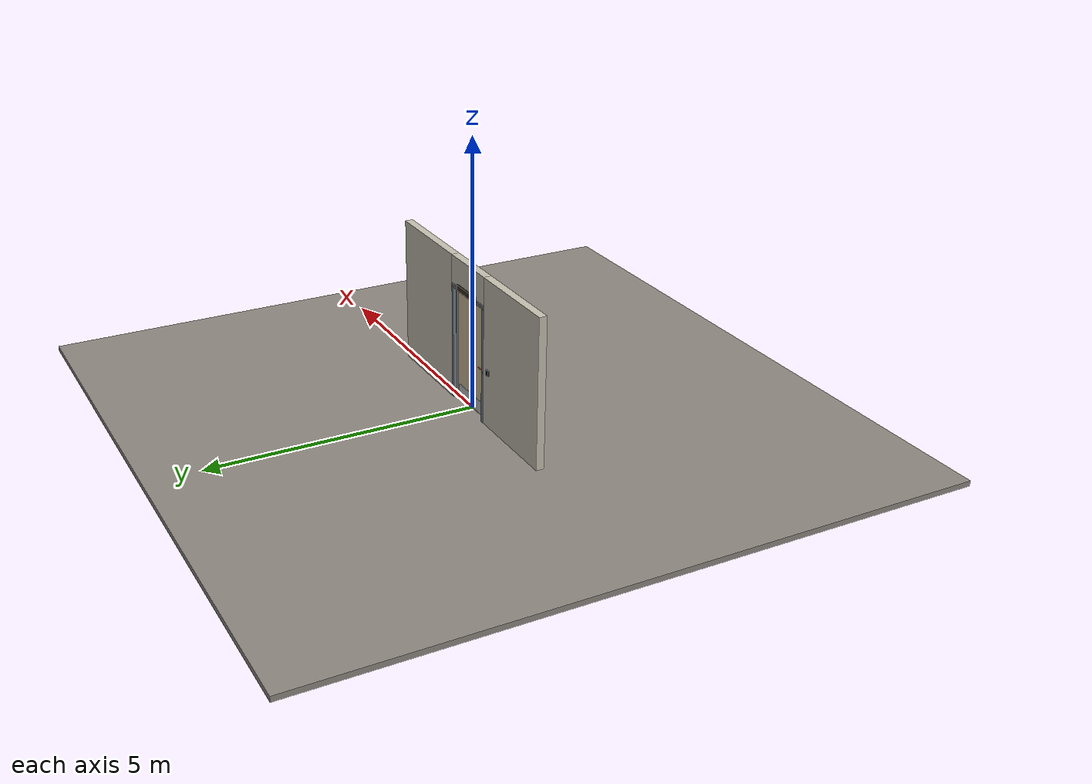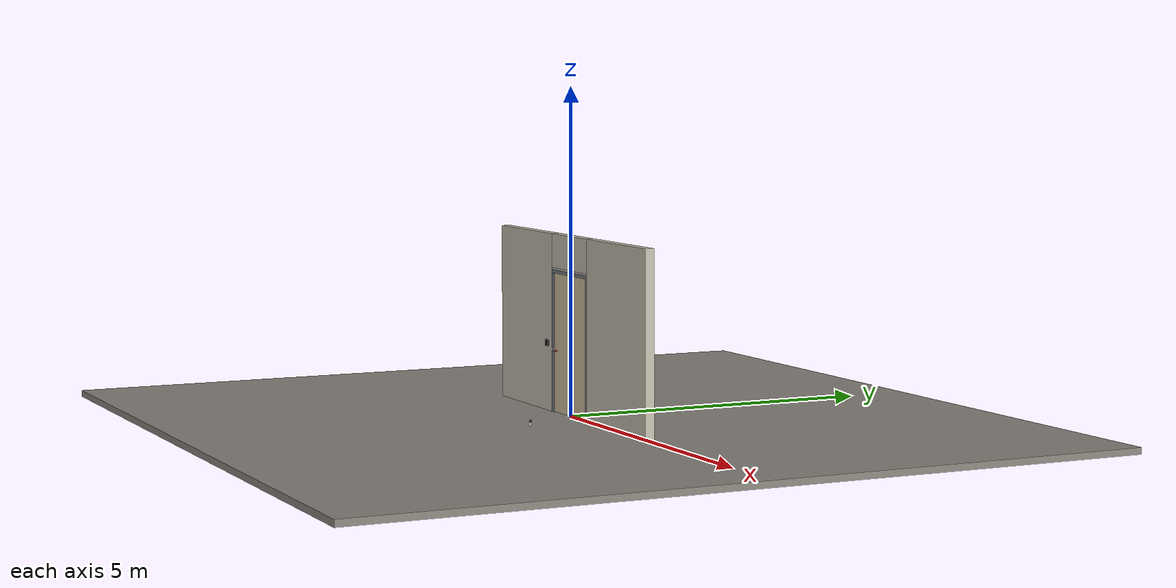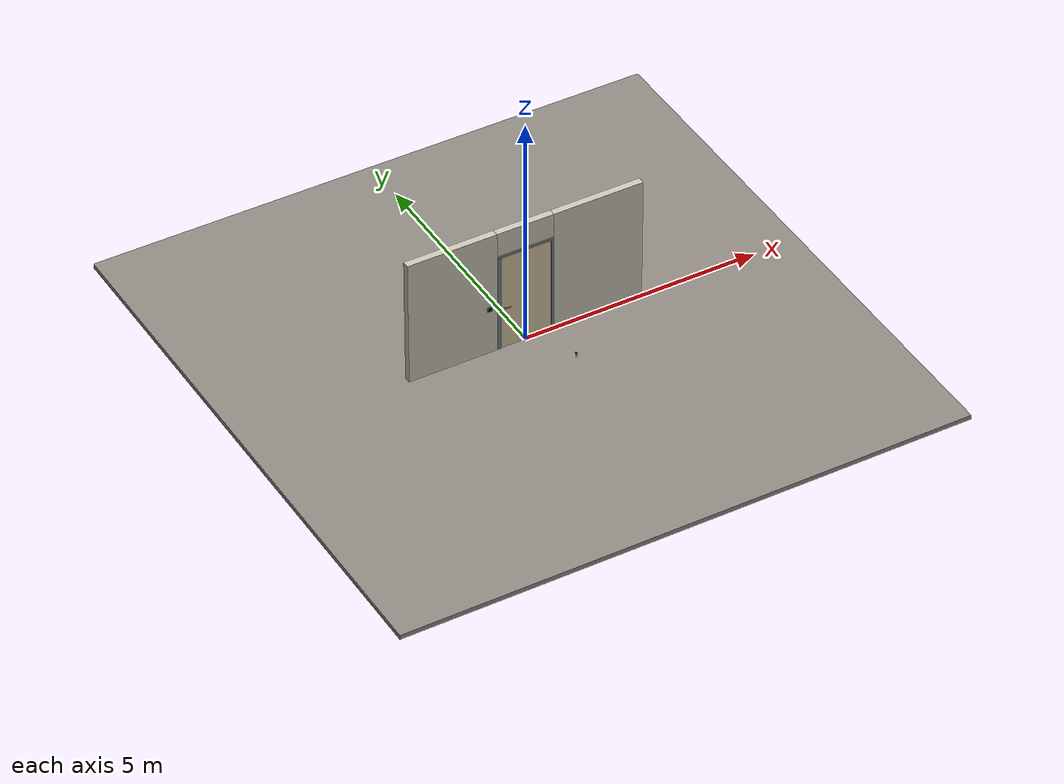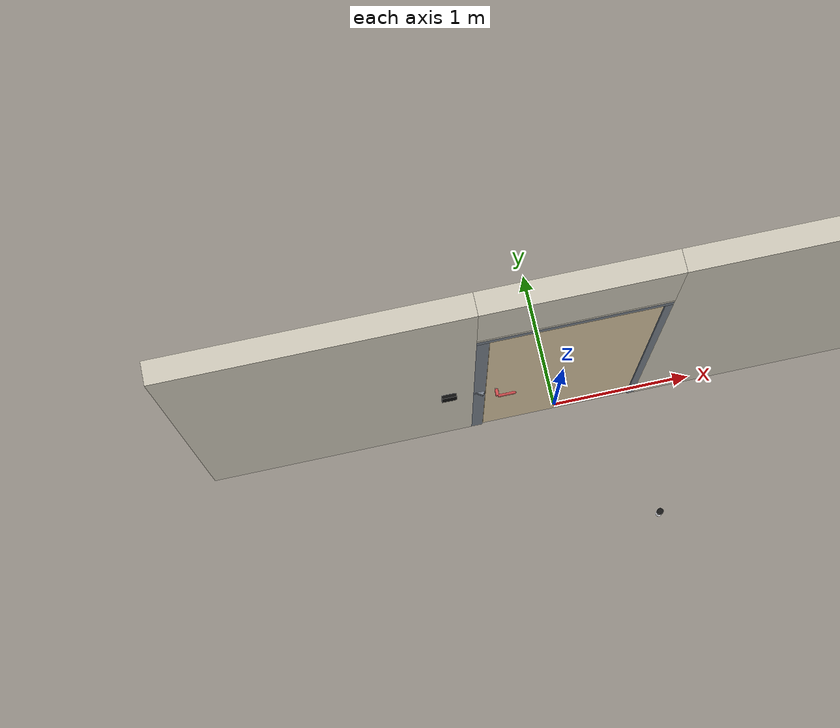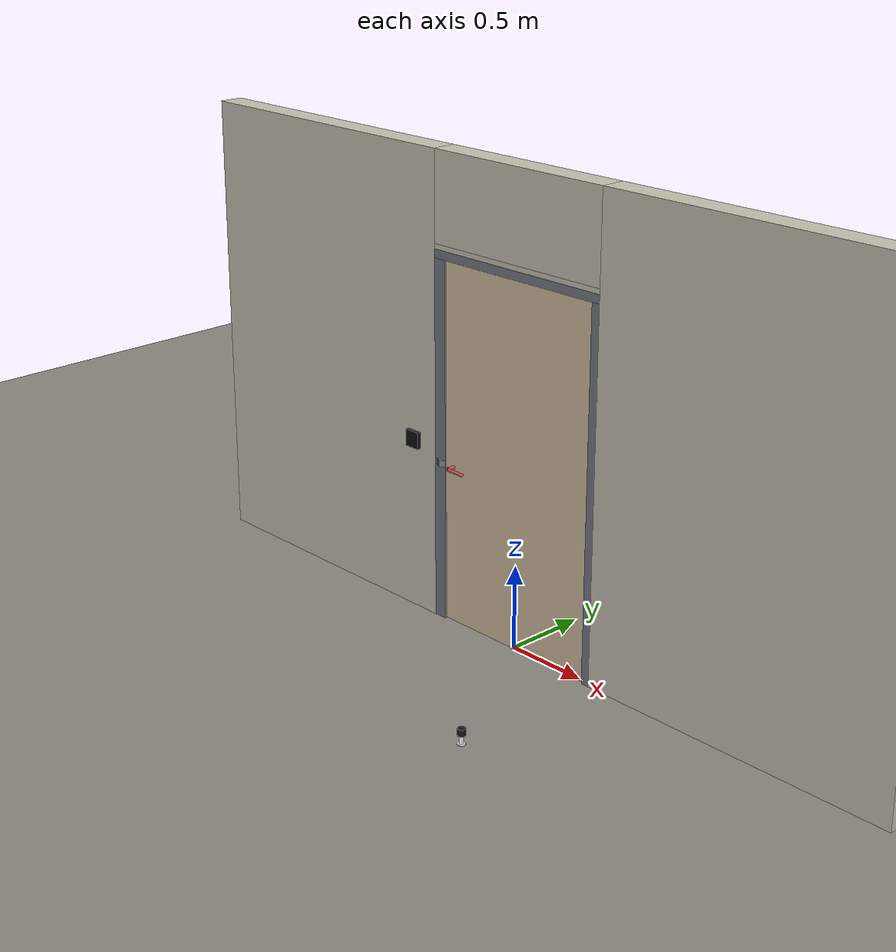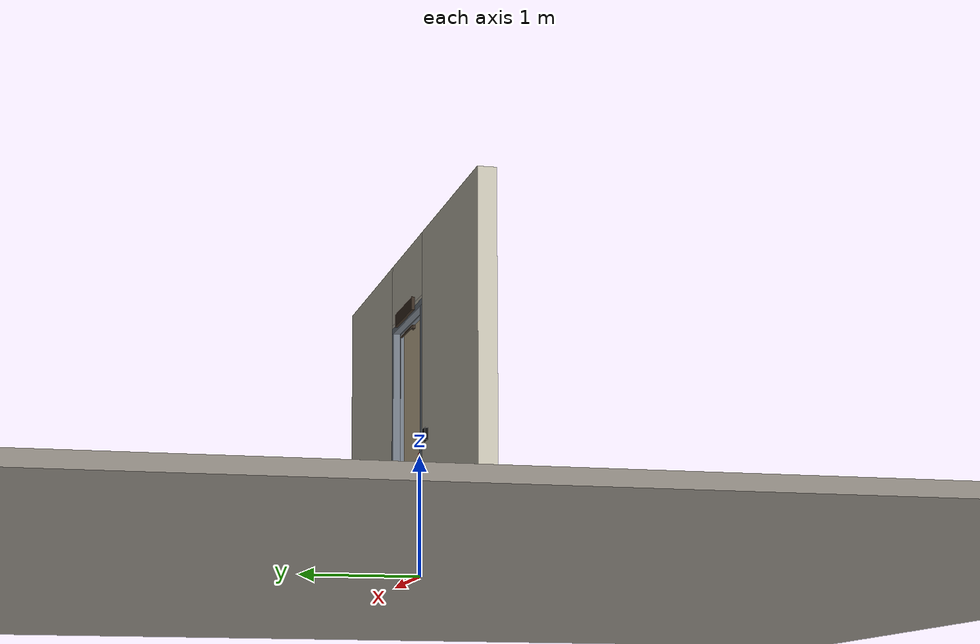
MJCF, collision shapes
<?xml version="1.0" ?>
<mujoco model="db0488_automatic_swing_full">
  <compiler angle="radian" meshdir="../../hardware" texturedir="../../textures" autolimits="true" inertiafromgeom="false"/>
  <option timestep="0.002" integrator="implicitfast" cone="elliptic" impratio="10" noslip_iterations="3">
    <flag multiccd="enable"/>
  </option>
  <size memory="16M"/>
  <default>
    <geom condim="4" solref="0.005 1" solimp="0.95 0.99 0.001"/>
    <joint solreflimit="0.005 1" solimplimit="0.95 0.99 0.001"/>
    <tendon solreflimit="0.005 1"/>
    <equality solref="0.002 1"/>
  </default>
  <visual>
    <headlight ambient="0.4 0.4 0.4" diffuse="0.7 0.7 0.7" specular="0.2 0.2 0.2"/>
    <quality shadowsize="4096"/>
    <map znear="0.01" zfar="60"/>
  </visual>
  <asset>
    <mesh name="hinge_e22b26c0c1" file="hinge_e22b26c0c1.obj"/>
    <mesh name="hinge_jamb_e1d088f8dc" file="hinge_jamb_e1d088f8dc.obj"/>
    <mesh name="lever_9f02b544cf" file="lever_9f02b544cf.obj"/>
    <material name="mat_floor" rgba="0.55 0.53 0.5 1" specular="0.2" shininess="0.15" reflectance="0"/>
    <material name="mat_wall" rgba="0.78 0.76 0.7 1" specular="0.2" shininess="0.1" reflectance="0"/>
    <material name="mat_leaf" rgba="0.82 0.75 0.62 1" specular="0.2" shininess="0.32" reflectance="0"/>
    <material name="mat_hinge" rgba="0.65 0.66 0.68 1" specular="0.74" shininess="0.5" reflectance="0.36"/>
    <material name="mat_op_nickel_satin" rgba="0.72 0.7 0.66 1" specular="0.8" shininess="0.65" reflectance="0.4"/>
    <material name="mat_trim" rgba="0.85 0.66 0.3 1" specular="0.8" shininess="0.75" reflectance="0.4"/>
    <material name="mat_bolt" rgba="0.75 0.76 0.77 1" specular="0.8" shininess="0.65" reflectance="0.4"/>
    <material name="mat_frame" rgba="0.45 0.48 0.52 1" specular="0.32" shininess="0.6" reflectance="0.08"/>
    <material name="mat_closer" rgba="0.22 0.17 0.13 1" specular="0.8" shininess="0.6" reflectance="0.4"/>
    <material name="mat_kick" rgba="0.75 0.76 0.77 1" specular="0.8" shininess="0.65" reflectance="0.4"/>
    <material name="mat_wallreader" rgba="0.05 0.05 0.05 1" specular="0.38" shininess="0.3" reflectance="0.12"/>
    <material name="mat_bumper_stop" rgba="0.08 0.08 0.08 1" specular="0.2" shininess="0.1" reflectance="0"/>
    <material name="mat_stop_base" rgba="0.9 0.9 0.92 1" specular="0.8" shininess="0.9" reflectance="0.4"/>
    <texture name="skybox" type="skybox" builtin="gradient" rgb1="0.6 0.7 0.85" rgb2="0.9 0.92 0.95" width="256" height="256"/>
  </asset>
  <worldbody>
    <light name="sun" pos="1.5 -2.5 4" dir="-0.3 0.5 -0.8" directional="true" diffuse="0.8 0.8 0.8" specular="0.3 0.3 0.3" castshadow="true"/>
    <light name="fill" pos="-1.5 2.5 3" dir="0.3 -0.5 -0.7" directional="true" diffuse="0.35 0.35 0.4" castshadow="false"/>
    <camera name="robot_view" pos="0 -2.594313 1.812087" xyaxes="1 0 0 0 0.26963 0.962964" fovy="52"/>
    <camera name="far_view" pos="0 2.681312 1.812087" xyaxes="-1 0 0 0 -0.26963 0.962964" fovy="52"/>
    <camera name="iso" pos="-2.004737 -2.172262 2.234138" xyaxes="0.741536 -0.670913 0 0.242917 0.268487 0.932151" fovy="46"/>
    <camera name="detail_handle" pos="-0.183 -0.877 1.245" xyaxes="0.97561 0.219512 0 -0.070934 0.315262 0.94635" fovy="38"/>
    <geom name="floor" type="box" size="6 6 0.05" pos="0 0 -0.05" material="mat_floor" group="0" contype="1" conaffinity="1" friction="0.8 0.005 0.0001" density="2400"/>
    <geom name="wall_left" type="box" size="0.9415 0.0725 1.3735" pos="-1.5585 0.0435 1.3735" material="mat_wall" group="0" contype="1" conaffinity="1" friction="0.6 0.005 0.0001" density="800"/>
    <geom name="wall_right" type="box" size="0.9565 0.0725 1.3735" pos="1.5435 0.0435 1.3735" material="mat_wall" group="0" contype="1" conaffinity="1" friction="0.6 0.005 0.0001" density="800"/>
    <geom name="wall_header" type="box" size="0.602 0.0725 0.26" pos="-0.015 0.0435 2.487" material="mat_wall" group="0" contype="1" conaffinity="1" friction="0.6 0.005 0.0001" density="800"/>
    <geom name="hinge_0_jamb" type="mesh" mesh="hinge_jamb_e1d088f8dc" pos="0.534 -0.029 0.259" quat="0 0 1 0" material="mat_hinge" group="1" contype="0" conaffinity="0" density="7850"/>
    <geom name="hinge_1_jamb" type="mesh" mesh="hinge_jamb_e1d088f8dc" pos="0.534 -0.029 1.076" quat="0 0 1 0" material="mat_hinge" group="1" contype="0" conaffinity="0" density="7850"/>
    <geom name="hinge_2_jamb" type="mesh" mesh="hinge_jamb_e1d088f8dc" pos="0.534 -0.029 1.963" quat="0 0 1 0" material="mat_hinge" group="1" contype="0" conaffinity="0" density="7850"/>
    <geom name="jamb_hinge" type="box" size="0.025 0.0725 1.0735" pos="0.562 0.0435 1.0735" material="mat_frame" group="0" contype="1" conaffinity="1" friction="0.6 0.005 0.0001" density="300"/>
    <geom name="strike_965_wall_n" type="box" size="0.04 0.05325 0.018" pos="-0.577 0.06275 0.965" material="mat_frame" group="0" contype="1" conaffinity="1" friction="0.6 0.005 0.0001" density="300"/>
    <geom name="strike_965_wall_p" type="box" size="0.04 0.008 0.018" pos="-0.577 -0.0175 0.965" material="mat_frame" group="0" contype="1" conaffinity="1" friction="0.6 0.005 0.0001" density="300"/>
    <geom name="strike_965_ramp" type="box" size="0.04 0.018028 0.018" pos="-0.580282 -0.018312 0.965" quat="0.957092 0 0 -0.289784" material="mat_frame" group="0" contype="1" conaffinity="1" friction="0.12 0.005 0.0001" density="300"/>
    <geom name="strike_965_back" type="box" size="0.0285 0.0095 0.018" pos="-0.5885 0 0.965" material="mat_frame" group="0" contype="1" conaffinity="1" friction="0.6 0.005 0.0001" density="300"/>
    <geom name="jamb_strike_0" type="box" size="0.04 0.0725 0.4735" pos="-0.577 0.0435 0.4735" material="mat_frame" group="0" contype="1" conaffinity="1" friction="0.6 0.005 0.0001" density="300"/>
    <geom name="jamb_strike_1" type="box" size="0.04 0.0725 0.582" pos="-0.577 0.0435 1.565" material="mat_frame" group="0" contype="1" conaffinity="1" friction="0.6 0.005 0.0001" density="300"/>
    <geom name="jamb_head" type="box" size="0.602 0.0725 0.025" pos="-0.015 0.0435 2.172" material="mat_frame" group="0" contype="1" conaffinity="1" friction="0.6 0.005 0.0001" density="300"/>
    <geom name="head_stud" type="box" size="0.602 0.0725 0.015" pos="-0.015 0.0435 2.212" material="mat_wall" group="0" contype="1" conaffinity="1" friction="0.6 0.005 0.0001" density="500"/>
    <geom name="stop_hinge" type="box" size="0.0055 0.016 1.0735" pos="0.5315 0.0385 1.0735" material="mat_frame" group="0" contype="1" conaffinity="1" friction="0.6 0.005 0.0001" density="300"/>
    <geom name="stop_strike" type="box" size="0.0055 0.016 1.0735" pos="-0.5315 0.0385 1.0735" material="mat_frame" group="0" contype="1" conaffinity="1" friction="0.6 0.005 0.0001" density="300"/>
    <geom name="stop_head" type="box" size="0.537 0.016 0.0055" pos="0 0.0385 2.1415" material="mat_frame" group="0" contype="1" conaffinity="1" friction="0.6 0.005 0.0001" density="300"/>
    <geom name="auto_operator_header" type="box" size="0.34 0.055 0.055" pos="0 0.087 2.218" material="mat_closer" group="0" contype="1" conaffinity="1" friction="0.6 0.005 0.0001" density="1500"/>
    <geom name="wave_sensor_n" type="box" size="0.05 0.012 0.05" pos="-0.787 -0.041 1.05" material="mat_wallreader" group="0" contype="1" conaffinity="1" friction="0.6 0.005 0.0001" density="1000"/>
    <geom name="wave_sensor_p" type="box" size="0.05 0.012 0.05" pos="-0.787 0.128 1.05" material="mat_wallreader" group="0" contype="1" conaffinity="1" friction="0.6 0.005 0.0001" density="1000"/>
    <geom name="wave_sensor_p_pad" type="box" size="0.04 0.073 0.04" pos="-0.787 0.0435 1.05" material="mat_wallreader" group="1" contype="0" conaffinity="0" density="7850"/>
    <geom name="door_stop_base" type="cylinder" size="0.022 0.003" pos="0.55 -0.93595 0.003" material="mat_stop_base" group="0" contype="1" conaffinity="1" friction="0.6 0.005 0.0001" density="7850"/>
    <geom name="door_stop_post" type="cylinder" size="0.012 0.0245" pos="0.55 -0.93595 0.0305" material="mat_stop_base" group="0" contype="1" conaffinity="1" friction="0.6 0.005 0.0001" density="7850"/>
    <geom name="door_stop_bumper" type="cylinder" size="0.022 0.02" pos="0.55 -0.93595 0.075" material="mat_bumper_stop" group="0" contype="1" conaffinity="1" friction="0.6 0.005 0.0001" density="1100"/>
    <site name="approach_point" pos="0 -1.5 0" quat="1 0 0 0" size="0.05" rgba="0.2 0.9 0.2 0.5" group="4"/>
    <site name="goal_point" pos="0 1.5 0" quat="1 0 0 0" size="0.05" rgba="0.2 0.9 0.2 0.5" group="4"/>
    <site name="door_plane_center" pos="0 0 1.0735" quat="1 0 0 0" size="0.02" rgba="0.2 0.9 0.2 0.5" group="4"/>
    <body name="leaf" pos="0.537 0 0">
      <inertial pos="-0.529686 0.001153 1.040621" mass="78.17739" quat="0.501808 -0.501216 -0.498026 -0.498939" diaginertia="7.534743762 31.765620957 39.270134993"/>
      <joint name="leaf_hinge" type="hinge" axis="0 0 1" pos="-0.003 -0.029 0" limited="true" range="0 1.570796" damping="15.49954" frictionloss="2.215704" stiffness="15.342537" springref="-1.864099" armature="0.02"/>
      <geom name="leaf_slab" type="box" size="0.5335 0.022 1.067" pos="-0.5365 0 1.076" material="mat_leaf" group="0" contype="1" conaffinity="1" friction="0.4 0.005 0.0001" density="1"/>
      <geom name="hinge_0" type="mesh" mesh="hinge_e22b26c0c1" pos="-0.003 -0.029 0.259" quat="0 0 1 0" material="mat_hinge" group="1" contype="0" conaffinity="0" density="7850"/>
      <geom name="hinge_1" type="mesh" mesh="hinge_e22b26c0c1" pos="-0.003 -0.029 1.076" quat="0 0 1 0" material="mat_hinge" group="1" contype="0" conaffinity="0" density="7850"/>
      <geom name="hinge_2" type="mesh" mesh="hinge_e22b26c0c1" pos="-0.003 -0.029 1.963" quat="0 0 1 0" material="mat_hinge" group="1" contype="0" conaffinity="0" density="7850"/>
      <geom name="leaf_latch_bolt_faceplate" type="box" size="0.0006 0.014 0.028" pos="-1.0694 0 0.965" material="mat_bolt" group="1" contype="0" conaffinity="0" density="8500"/>
      <geom name="auto_operator_arm" type="box" size="0.22 0.008 0.008" pos="-0.25 0.052 2.114" material="mat_closer" group="1" contype="0" conaffinity="0" density="2700"/>
      <geom name="auto_operator_arm_shoe" type="box" size="0.03 0.016 0.014" pos="-0.44 0.038 2.114" material="mat_closer" group="1" contype="0" conaffinity="0" density="2700"/>
      <geom name="kick_plate_p" type="box" size="0.5035 0.0008 0.125" pos="-0.5365 0.0228 0.144" material="mat_kick" group="2" contype="0" conaffinity="0" density="7900"/>
      <site name="leaf_edge_mid" pos="-1.07 0 1.067" quat="1 0 0 0" size="0.02" rgba="0.2 0.9 0.2 0.5" group="4"/>
      <body name="leaf_handle" pos="-1 0 0.965">
        <inertial pos="0.028544 0 0" mass="0.978187" quat="0 0.707107 0.707107 0" diaginertia="0.001772047 0.003604455 0.005198299"/>
        <joint name="leaf_handle_hinge" type="hinge" axis="0 1 0" limited="true" range="0 0.96" damping="0.245624" frictionloss="0.048" stiffness="1.2" springref="-0.458333" armature="0.01"/>
        <geom name="leaf_handle_spindle" type="cylinder" size="0.006 0.03" pos="0 0 0" quat="0.707107 -0.707107 0 0" material="mat_op_nickel_satin" group="1" contype="0" conaffinity="0" density="7850"/>
        <geom name="leaf_handle_lever_n" type="mesh" mesh="lever_9f02b544cf" pos="0 -0.022 0" quat="0 0 -0.707107 0.707107" material="mat_op_nickel_satin" group="1" contype="0" conaffinity="0" density="3000"/>
        <geom name="leaf_handle_lever_col_n" type="capsule" size="0.0095 0.053" pos="0.0625 -0.077 0" quat="0.707107 0 0.707107 0" material="mat_op_nickel_satin" group="3" contype="1" conaffinity="1" rgba="0.8 0.3 0.3 0.25" friction="0.7 0.01 0.0001" density="3000"/>
        <geom name="leaf_handle_hub_col_n" type="cylinder" size="0.012 0.022" pos="0 -0.052 0" quat="0.707107 -0.707107 0 0" material="mat_op_nickel_satin" group="3" contype="1" conaffinity="1" rgba="0.8 0.3 0.3 0.25" friction="0.6 0.005 0.0001" density="3000"/>
        <geom name="leaf_handle_lever_p" type="mesh" mesh="lever_9f02b544cf" pos="0 0.022 0" quat="0 0 0.707107 0.707107" material="mat_op_nickel_satin" group="1" contype="0" conaffinity="0" density="3000"/>
        <geom name="leaf_handle_lever_col_p" type="capsule" size="0.0095 0.053" pos="0.0625 0.077 0" quat="0.707107 0 0.707107 0" material="mat_op_nickel_satin" group="3" contype="1" conaffinity="1" rgba="0.8 0.3 0.3 0.25" friction="0.7 0.01 0.0001" density="3000"/>
        <geom name="leaf_handle_hub_col_p" type="cylinder" size="0.012 0.022" pos="0 0.052 0" quat="0.707107 -0.707107 0 0" material="mat_op_nickel_satin" group="3" contype="1" conaffinity="1" rgba="0.8 0.3 0.3 0.25" friction="0.6 0.005 0.0001" density="3000"/>
        <site name="leaf_handle_grip_n" pos="0.1 -0.077 0" quat="1 0 0 0" size="0.012" rgba="0.2 0.9 0.2 0.5" group="4"/>
        <site name="leaf_handle_grip_p" pos="0.1 0.077 0" quat="1 0 0 0" size="0.012" rgba="0.2 0.9 0.2 0.5" group="4"/>
      </body>
      <body name="leaf_latch_bolt" pos="-1.07 0 0.965">
        <inertial pos="0.0055 0 0" mass="0.074627" quat="0.92388 0.382683 0 0" diaginertia="0.000002271 0.000013255 0.000013255"/>
        <joint name="leaf_latch_bolt_slide" type="slide" axis="1 0 0" limited="true" range="0 0.019" damping="2" frictionloss="0.3" stiffness="550" springref="-0.01" armature="0.1"/>
        <geom name="leaf_latch_bolt_capsule" type="capsule" size="0.008 0.0165" pos="0.0055 0 0" quat="0.707107 0 -0.707107 0" material="mat_bolt" group="0" contype="1" conaffinity="1" friction="0.2 0.005 0.0001" density="8500"/>
      </body>
    </body>
  </worldbody>
  <tendon>
    <fixed name="leaf_latch_bolt_coupling" limited="true" range="0 10">
      <joint joint="leaf_latch_bolt_slide" coef="1"/>
      <joint joint="leaf_handle_hinge" coef="-0.020879"/>
    </fixed>
  </tendon>
  <actuator>
    <position name="swing_operator" joint="leaf_hinge" kp="150" kv="40" forcerange="-60 60" ctrlrange="0 1.6"/>
  </actuator>
  <sensor>
    <jointpos name="leaf_hinge_pos" joint="leaf_hinge"/>
    <jointvel name="leaf_hinge_vel" joint="leaf_hinge"/>
    <jointpos name="leaf_handle_hinge_pos" joint="leaf_handle_hinge"/>
    <jointvel name="leaf_handle_hinge_vel" joint="leaf_handle_hinge"/>
    <jointpos name="leaf_latch_bolt_slide_pos" joint="leaf_latch_bolt_slide"/>
    <jointvel name="leaf_latch_bolt_slide_vel" joint="leaf_latch_bolt_slide"/>
  </sensor>
</mujoco>
